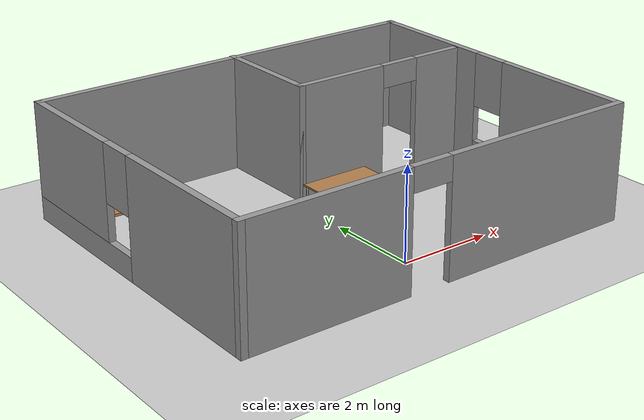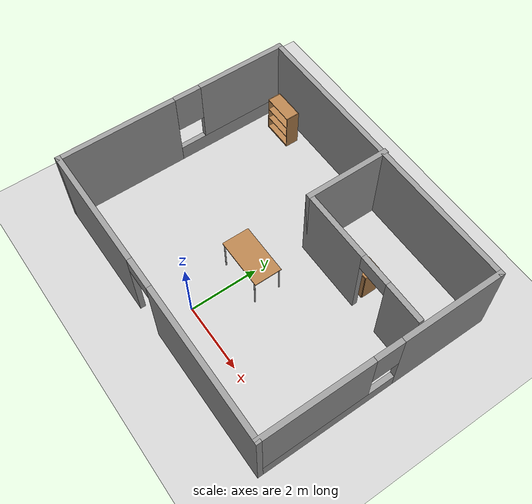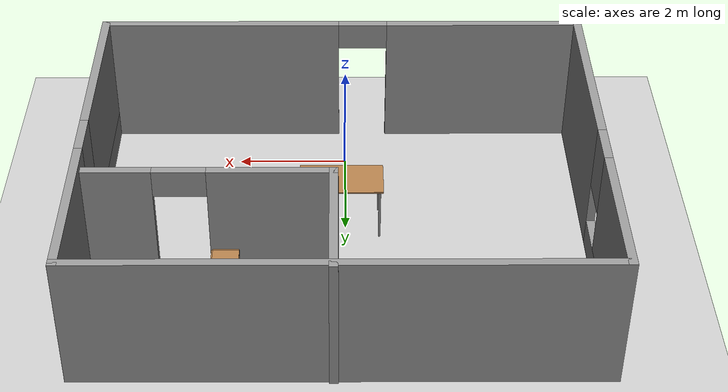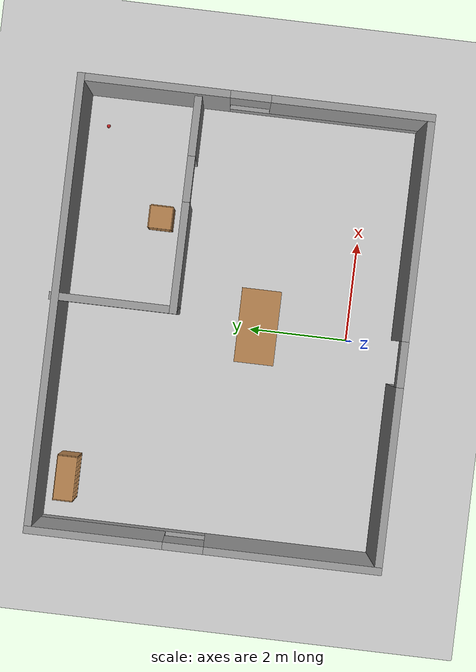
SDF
<sdf version="1.6">
 <world name="default">
  <light name="sun" type="directional">
   <pose>0 0 10 0 -0 0</pose>
   <diffuse>0.8 0.8 0.8 1</diffuse>
   <specular>0.2 0.2 0.2 1</specular>
   <attenuation>
    <range>1000</range>
    <constant>0.9</constant>
    <linear>0.01</linear>
    <quadratic>0.001</quadratic>
   </attenuation>
   <direction>-0.5 0.1 -0.9</direction>
   <spot><inner_angle>0</inner_angle><outer_angle>0</outer_angle><falloff>0</falloff></spot>
  </light>
  <model name="ground_plane">
   <static>1</static>
   <link name="link">
    <collision name="collision">
     <geometry><plane><normal>0 0 1</normal><size>100 100</size></plane></geometry>
     <surface>
      <contact><collide_bitmask>65535</collide_bitmask></contact>
      <friction><ode><mu>100</mu><mu2>50</mu2></ode></friction>
     </surface>
    </collision>
    <visual name="visual">
     <cast_shadows>0</cast_shadows>
     <geometry><plane><normal>0 0 1</normal><size>100 100</size></plane></geometry>
     <material>
      <script><uri>file://media/materials/scripts/gazebo.material</uri><name>Gazebo/Grey</name></script>
     </material>
    </visual>
   </link>
  </model>
  <gravity>0 0 -9.8</gravity>
  <magnetic_field>6e-06 2.3e-05 -4.2e-05</magnetic_field>
  <atmosphere type="adiabatic"/>
  <physics type="ode">
   <max_step_size>0.001</max_step_size>
   <real_time_factor>1</real_time_factor>
   <real_time_update_rate>1000</real_time_update_rate>
  </physics>
  <scene><ambient>0.4 0.4 0.4 1</ambient><background>0.7 0.7 0.7 1</background><shadows>1</shadows></scene>
  <audio><device>default</device></audio>
  <spherical_coordinates>
   <surface_model>EARTH_WGS84</surface_model>
   <latitude_deg>0</latitude_deg>
   <longitude_deg>0</longitude_deg>
   <elevation>0</elevation>
   <heading_deg>0</heading_deg>
  </spherical_coordinates>
  <model name="myroom">
   <pose>0.063928 2.44788 0 0 -0 0</pose>
   <link name="Wall_10">
    <pose>2.18763 1.09478 0 0 -0 0</pose>
    <visual name="Wall_10_Visual_0">
     <pose>-1.03496 0 1.25 0 -0 0</pose>
     <geometry><box><size>2.18007 0.15 2.5</size></box></geometry>
     <material>
      <script><uri>file://media/materials/scripts/gazebo.material</uri><name>Gazebo/Grey</name></script>
      <ambient>1 1 1 1</ambient>
     </material>
     <meta><layer>0</layer></meta>
    </visual>
    <collision name="Wall_10_Collision_0">
     <geometry><box><size>2.18007 0.15 2.5</size></box></geometry>
     <pose>-1.03496 0 1.25 0 -0 0</pose>
    </collision>
    <visual name="Wall_10_Visual_1">
     <pose>1.54004 0 1.25 0 -0 0</pose>
     <geometry><box><size>1.16993 0.15 2.5</size></box></geometry>
     <material>
      <script><uri>file://media/materials/scripts/gazebo.material</uri><name>Gazebo/Grey</name></script>
      <ambient>1 1 1 1</ambient>
     </material>
     <meta><layer>0</layer></meta>
    </visual>
    <collision name="Wall_10_Collision_1">
     <geometry><box><size>1.16993 0.15 2.5</size></box></geometry>
     <pose>1.54004 0 1.25 0 -0 0</pose>
    </collision>
    <visual name="Wall_10_Visual_2">
     <pose>0.50507 0 2.25 0 -0 0</pose>
     <geometry><box><size>0.9 0.15 0.5</size></box></geometry>
     <material>
      <script><uri>file://media/materials/scripts/gazebo.material</uri><name>Gazebo/Grey</name></script>
      <ambient>1 1 1 1</ambient>
     </material>
     <meta><layer>0</layer></meta>
    </visual>
    <collision name="Wall_10_Collision_2">
     <geometry><box><size>0.9 0.15 0.5</size></box></geometry>
     <pose>0.50507 0 2.25 0 -0 0</pose>
    </collision>
   </link>
   <link name="Wall_4">
    <pose>-4.425 -0.019782 0 0 -0 1.5708</pose>
    <visual name="Wall_4_Visual_0">
     <pose>-1.7538 0 1.25 0 -0 0</pose>
     <geometry><box><size>3.4924 0.15 2.5</size></box></geometry>
     <material>
      <script><uri>file://media/materials/scripts/gazebo.material</uri><name>Gazebo/Grey</name></script>
      <ambient>1 1 1 1</ambient>
     </material>
     <meta><layer>0</layer></meta>
    </visual>
    <collision name="Wall_4_Collision_0">
     <geometry><box><size>3.4924 0.15 2.5</size></box></geometry>
     <pose>-1.7538 0 1.25 0 -0 0</pose>
    </collision>
    <visual name="Wall_4_Visual_1">
     <pose>1.7462 0 0.25 0 -0 0</pose>
     <geometry><box><size>3.5076 0.15 0.5</size></box></geometry>
     <material>
      <script><uri>file://media/materials/scripts/gazebo.material</uri><name>Gazebo/Grey</name></script>
      <ambient>1 1 1 1</ambient>
     </material>
     <meta><layer>0</layer></meta>
    </visual>
    <collision name="Wall_4_Collision_1">
     <geometry><box><size>3.5076 0.15 0.5</size></box></geometry>
     <pose>1.7462 0 0.25 0 -0 0</pose>
    </collision>
    <visual name="Wall_4_Visual_2">
     <pose>2.1462 0 1.5 0 -0 0</pose>
     <geometry><box><size>2.7076 0.15 2</size></box></geometry>
     <material>
      <script><uri>file://media/materials/scripts/gazebo.material</uri><name>Gazebo/Grey</name></script>
      <ambient>1 1 1 1</ambient>
     </material>
     <meta><layer>0</layer></meta>
    </visual>
    <collision name="Wall_4_Collision_2">
     <geometry><box><size>2.7076 0.15 2</size></box></geometry>
     <pose>2.1462 0 1.5 0 -0 0</pose>
    </collision>
    <visual name="Wall_4_Visual_3">
     <pose>0.392396 0 1.9 0 -0 0</pose>
     <geometry><box><size>0.8 0.15 1.2</size></box></geometry>
     <material>
      <script><uri>file://media/materials/scripts/gazebo.material</uri><name>Gazebo/Grey</name></script>
      <ambient>1 1 1 1</ambient>
     </material>
     <meta><layer>0</layer></meta>
    </visual>
    <collision name="Wall_4_Collision_3">
     <geometry><box><size>0.8 0.15 1.2</size></box></geometry>
     <pose>0.392396 0 1.9 0 -0 0</pose>
    </collision>
   </link>
   <link name="Wall_5">
    <collision name="Wall_5_Collision">
     <geometry><box><size>9 0.15 2.5</size></box></geometry>
     <pose>0 0 1.25 0 -0 0</pose>
    </collision>
    <visual name="Wall_5_Visual">
     <pose>0 0 1.25 0 -0 0</pose>
     <geometry><box><size>9 0.15 2.5</size></box></geometry>
     <material>
      <script><uri>file://media/materials/scripts/gazebo.material</uri><name>Gazebo/Grey</name></script>
      <ambient>1 1 1 1</ambient>
     </material>
     <meta><layer>0</layer></meta>
    </visual>
    <pose>-0 3.40522 0 0 -0 0</pose>
   </link>
   <link name="Wall_6">
    <pose>4.425 -0.019782 0 0 -0 -1.5708</pose>
    <visual name="Wall_6_Visual_0">
     <pose>-2.00171 0 1.25 0 -0 0</pose>
     <geometry><box><size>2.99657 0.15 2.5</size></box></geometry>
     <material>
      <script><uri>file://media/materials/scripts/gazebo.material</uri><name>Gazebo/Grey</name></script>
      <ambient>1 1 1 1</ambient>
     </material>
     <meta><layer>0</layer></meta>
    </visual>
    <collision name="Wall_6_Collision_0">
     <geometry><box><size>2.99657 0.15 2.5</size></box></geometry>
     <pose>-2.00171 0 1.25 0 -0 0</pose>
    </collision>
    <visual name="Wall_6_Visual_1">
     <pose>1.49829 0 0.25 0 -0 0</pose>
     <geometry><box><size>4.00343 0.15 0.5</size></box></geometry>
     <material>
      <script><uri>file://media/materials/scripts/gazebo.material</uri><name>Gazebo/Grey</name></script>
      <ambient>1 1 1 1</ambient>
     </material>
     <meta><layer>0</layer></meta>
    </visual>
    <collision name="Wall_6_Collision_1">
     <geometry><box><size>4.00343 0.15 0.5</size></box></geometry>
     <pose>1.49829 0 0.25 0 -0 0</pose>
    </collision>
    <visual name="Wall_6_Visual_2">
     <pose>1.89829 0 1.5 0 -0 0</pose>
     <geometry><box><size>3.20343 0.15 2</size></box></geometry>
     <material>
      <script><uri>file://media/materials/scripts/gazebo.material</uri><name>Gazebo/Grey</name></script>
      <ambient>1 1 1 1</ambient>
     </material>
     <meta><layer>0</layer></meta>
    </visual>
    <collision name="Wall_6_Collision_2">
     <geometry><box><size>3.20343 0.15 2</size></box></geometry>
     <pose>1.89829 0 1.5 0 -0 0</pose>
    </collision>
    <visual name="Wall_6_Visual_3">
     <pose>-0.10343 0 1.9 0 -0 0</pose>
     <geometry><box><size>0.8 0.15 1.2</size></box></geometry>
     <material>
      <script><uri>file://media/materials/scripts/gazebo.material</uri><name>Gazebo/Grey</name></script>
      <ambient>1 1 1 1</ambient>
     </material>
     <meta><layer>0</layer></meta>
    </visual>
    <collision name="Wall_6_Collision_3">
     <geometry><box><size>0.8 0.15 1.2</size></box></geometry>
     <pose>-0.10343 0 1.9 0 -0 0</pose>
    </collision>
   </link>
   <link name="Wall_7">
    <pose>-0 -3.44478 0 0 -0 3.14159</pose>
    <visual name="Wall_7_Visual_0">
     <pose>-2.27766 0 1.25 0 -0 0</pose>
     <geometry><box><size>4.44468 0.15 2.5</size></box></geometry>
     <material>
      <script><uri>file://media/materials/scripts/gazebo.material</uri><name>Gazebo/Grey</name></script>
      <ambient>1 1 1 1</ambient>
     </material>
     <meta><layer>0</layer></meta>
    </visual>
    <collision name="Wall_7_Collision_0">
     <geometry><box><size>4.44468 0.15 2.5</size></box></geometry>
     <pose>-2.27766 0 1.25 0 -0 0</pose>
    </collision>
    <visual name="Wall_7_Visual_1">
     <pose>2.67234 0 1.25 0 -0 0</pose>
     <geometry><box><size>3.65532 0.15 2.5</size></box></geometry>
     <material>
      <script><uri>file://media/materials/scripts/gazebo.material</uri><name>Gazebo/Grey</name></script>
      <ambient>1 1 1 1</ambient>
     </material>
     <meta><layer>0</layer></meta>
    </visual>
    <collision name="Wall_7_Collision_1">
     <geometry><box><size>3.65532 0.15 2.5</size></box></geometry>
     <pose>2.67234 0 1.25 0 -0 0</pose>
    </collision>
    <visual name="Wall_7_Visual_2">
     <pose>0.394681 0 2.25 0 -0 0</pose>
     <geometry><box><size>0.9 0.15 0.5</size></box></geometry>
     <material>
      <script><uri>file://media/materials/scripts/gazebo.material</uri><name>Gazebo/Grey</name></script>
      <ambient>1 1 1 1</ambient>
     </material>
     <meta><layer>0</layer></meta>
    </visual>
    <collision name="Wall_7_Collision_2">
     <geometry><box><size>0.9 0.15 0.5</size></box></geometry>
     <pose>0.394681 0 2.25 0 -0 0</pose>
    </collision>
   </link>
   <link name="Wall_9">
    <collision name="Wall_9_Collision">
     <geometry><box><size>2.5 0.15 2.5</size></box></geometry>
     <pose>0 0 1.25 0 -0 0</pose>
    </collision>
    <visual name="Wall_9_Visual">
     <pose>0 0 1.25 0 -0 0</pose>
     <geometry><box><size>2.5 0.15 2.5</size></box></geometry>
     <material>
      <script><uri>file://media/materials/scripts/gazebo.material</uri><name>Gazebo/Grey</name></script>
      <ambient>1 1 1 1</ambient>
     </material>
     <meta><layer>0</layer></meta>
    </visual>
    <pose>0.137625 2.26978 0 0 -0 -1.5708</pose>
   </link>
   <static>1</static>
  </model>
  <model name="bookshelf">
   <static>1</static>
   <link name="link">
    <inertial><mass>1</mass></inertial>
    <collision name="back">
     <pose>0 0.005 0.6 0 -0 0</pose>
     <geometry><box><size>0.9 0.01 1.2</size></box></geometry>
    </collision>
    <visual name="visual1">
     <pose>0 0.005 0.6 0 -0 0</pose>
     <geometry><box><size>0.9 0.01 1.2</size></box></geometry>
     <material>
      <script><uri>file://media/materials/scripts/gazebo.material</uri><name>Gazebo/Wood</name></script>
     </material>
    </visual>
    <collision name="left_side">
     <pose>0.45 -0.195 0.6 0 -0 0</pose>
     <geometry><box><size>0.02 0.4 1.2</size></box></geometry>
    </collision>
    <visual name="visual2">
     <pose>0.45 -0.195 0.6 0 -0 0</pose>
     <geometry><box><size>0.02 0.4 1.2</size></box></geometry>
     <material>
      <script><uri>file://media/materials/scripts/gazebo.material</uri><name>Gazebo/Wood</name></script>
     </material>
    </visual>
    <collision name="right_side">
     <pose>-0.45 -0.195 0.6 0 -0 0</pose>
     <geometry><box><size>0.02 0.4 1.2</size></box></geometry>
    </collision>
    <visual name="visual3">
     <pose>-0.45 -0.195 0.6 0 -0 0</pose>
     <geometry><box><size>0.02 0.4 1.2</size></box></geometry>
     <material>
      <script><uri>file://media/materials/scripts/gazebo.material</uri><name>Gazebo/Wood</name></script>
     </material>
    </visual>
    <collision name="bottom">
     <pose>0 -0.195 0.03 0 -0 0</pose>
     <geometry><box><size>0.88 0.4 0.06</size></box></geometry>
    </collision>
    <visual name="visual4">
     <pose>0 -0.195 0.03 0 -0 0</pose>
     <geometry><box><size>0.88 0.4 0.06</size></box></geometry>
     <material>
      <script><uri>file://media/materials/scripts/gazebo.material</uri><name>Gazebo/Wood</name></script>
     </material>
    </visual>
    <collision name="top">
     <pose>0 -0.195 1.19 0 -0 0</pose>
     <geometry><box><size>0.88 0.4 0.02</size></box></geometry>
    </collision>
    <visual name="visual5">
     <pose>0 -0.195 1.19 0 -0 0</pose>
     <geometry><box><size>0.88 0.4 0.02</size></box></geometry>
     <material>
      <script><uri>file://media/materials/scripts/gazebo.material</uri><name>Gazebo/Wood</name></script>
     </material>
    </visual>
    <collision name="low_shelf">
     <pose>0 -0.195 0.43 0 -0 0</pose>
     <geometry><box><size>0.88 0.4 0.02</size></box></geometry>
    </collision>
    <visual name="visual6">
     <pose>0 -0.195 0.43 0 -0 0</pose>
     <geometry><box><size>0.88 0.4 0.02</size></box></geometry>
     <material>
      <script><uri>file://media/materials/scripts/gazebo.material</uri><name>Gazebo/Wood</name></script>
     </material>
    </visual>
    <collision name="high_shelf">
     <pose>0 -0.195 0.8 0 -0 0</pose>
     <geometry><box><size>0.88 0.4 0.02</size></box></geometry>
    </collision>
    <visual name="visual7">
     <pose>0 -0.195 0.8 0 -0 0</pose>
     <geometry><box><size>0.88 0.4 0.02</size></box></geometry>
     <material>
      <script><uri>file://media/materials/scripts/gazebo.material</uri><name>Gazebo/Wood</name></script>
     </material>
    </visual>
   </link>
   <pose>-3.39671 5.52441 0.000694 -0.003253 0 0</pose>
  </model>
  <model name="table">
   <static>1</static>
   <link name="link">
    <collision name="surface">
     <pose>0 0 1 0 -0 0</pose>
     <geometry><box><size>1.5 0.8 0.03</size></box></geometry>
     <surface><friction><ode><mu>0.6</mu><mu2>0.6</mu2></ode></friction></surface>
    </collision>
    <visual name="visual1">
     <pose>0 0 1 0 -0 0</pose>
     <geometry><box><size>1.5 0.8 0.03</size></box></geometry>
     <material>
      <script><uri>file://media/materials/scripts/gazebo.material</uri><name>Gazebo/Wood</name></script>
     </material>
    </visual>
    <collision name="front_left_leg">
     <pose>0.68 0.38 0.5 0 -0 0</pose>
     <geometry><cylinder><radius>0.02</radius><length>1</length></cylinder></geometry>
    </collision>
    <visual name="front_left_leg">
     <pose>0.68 0.38 0.5 0 -0 0</pose>
     <geometry><cylinder><radius>0.02</radius><length>1</length></cylinder></geometry>
     <material>
      <script><uri>file://media/materials/scripts/gazebo.material</uri><name>Gazebo/Grey</name></script>
     </material>
    </visual>
    <collision name="front_right_leg">
     <pose>0.68 -0.38 0.5 0 -0 0</pose>
     <geometry><cylinder><radius>0.02</radius><length>1</length></cylinder></geometry>
    </collision>
    <visual name="front_right_leg">
     <pose>0.68 -0.38 0.5 0 -0 0</pose>
     <geometry><cylinder><radius>0.02</radius><length>1</length></cylinder></geometry>
     <material>
      <script><uri>file://media/materials/scripts/gazebo.material</uri><name>Gazebo/Grey</name></script>
     </material>
    </visual>
    <collision name="back_right_leg">
     <pose>-0.68 -0.38 0.5 0 -0 0</pose>
     <geometry><cylinder><radius>0.02</radius><length>1</length></cylinder></geometry>
    </collision>
    <visual name="back_right_leg">
     <pose>-0.68 -0.38 0.5 0 -0 0</pose>
     <geometry><cylinder><radius>0.02</radius><length>1</length></cylinder></geometry>
     <material>
      <script><uri>file://media/materials/scripts/gazebo.material</uri><name>Gazebo/Grey</name></script>
     </material>
    </visual>
    <collision name="back_left_leg">
     <pose>-0.68 0.38 0.5 0 -0 0</pose>
     <geometry><cylinder><radius>0.02</radius><length>1</length></cylinder></geometry>
    </collision>
    <visual name="back_left_leg">
     <pose>-0.68 0.38 0.5 0 -0 0</pose>
     <geometry><cylinder><radius>0.02</radius><length>1</length></cylinder></geometry>
     <material>
      <script><uri>file://media/materials/scripts/gazebo.material</uri><name>Gazebo/Grey</name></script>
     </material>
    </visual>
   </link>
   <pose>0.073173 1.8555 0 0 -0 0</pose>
  </model>
  <model name="cabinet">
   <static>1</static>
   <link name="cabinet_bottom_plate">
    <inertial>
     <pose>0 0 -1 0 -0 0</pose>
     <inertia><ixx>2.05</ixx><ixy>0</ixy><ixz>0</ixz><iyy>2.05</iyy><iyz>0</iyz><izz>2.05</izz></inertia>
     <mass>25</mass>
    </inertial>
    <collision name="cabinet_bottom_plate_geom">
     <pose>0 0 0.01 0 -0 0</pose>
     <geometry><box><size>0.45 0.45 0.02</size></box></geometry>
    </collision>
    <visual name="cabinet_bottom_plate_geom_visual">
     <pose>0 0 0.01 0 -0 0</pose>
     <geometry><box><size>0.45 0.45 0.02</size></box></geometry>
     <material>
      <script><uri>file://media/materials/scripts/gazebo.material</uri><name>Gazebo/Wood</name></script>
     </material>
    </visual>
    <collision name="cabinet_bottom_plate_geom_cabinet_back_plate">
     <pose>0.235 0 0.51 0 -0 0</pose>
     <geometry><box><size>0.02 0.45 1.02</size></box></geometry>
    </collision>
    <visual name="cabinet_bottom_plate_geom_cabinet_back_plate_visual">
     <pose>0.235 0 0.51 0 -0 0</pose>
     <geometry><box><size>0.02 0.45 1.02</size></box></geometry>
     <material>
      <script><uri>file://media/materials/scripts/gazebo.material</uri><name>Gazebo/Wood</name></script>
     </material>
    </visual>
    <collision name="cabinet_bottom_plate_geom_cabinet_left_plate">
     <pose>0 0.235 0.51 0 -0 0</pose>
     <geometry><box><size>0.45 0.02 1.02</size></box></geometry>
    </collision>
    <visual name="cabinet_bottom_plate_geom_cabinet_left_plate_visual">
     <pose>0 0.235 0.51 0 -0 0</pose>
     <geometry><box><size>0.45 0.02 1.02</size></box></geometry>
     <material>
      <script><uri>file://media/materials/scripts/gazebo.material</uri><name>Gazebo/Wood</name></script>
     </material>
    </visual>
    <collision name="cabinet_bottom_plate_geom_cabinet_middle_plate">
     <pose>0 0 0.51 0 -0 0</pose>
     <geometry><box><size>0.45 0.45 0.02</size></box></geometry>
    </collision>
    <visual name="cabinet_bottom_plate_geom_cabinet_middle_plate_visual">
     <pose>0 0 0.51 0 -0 0</pose>
     <geometry><box><size>0.45 0.45 0.02</size></box></geometry>
     <material>
      <script><uri>file://media/materials/scripts/gazebo.material</uri><name>Gazebo/Wood</name></script>
     </material>
    </visual>
    <collision name="cabinet_bottom_plate_geom_cabinet_right_plate">
     <pose>0 -0.235 0.51 0 -0 0</pose>
     <geometry><box><size>0.45 0.02 1.02</size></box></geometry>
    </collision>
    <visual name="cabinet_bottom_plate_geom_cabinet_right_plate_visual">
     <pose>0 -0.235 0.51 0 -0 0</pose>
     <geometry><box><size>0.45 0.02 1.02</size></box></geometry>
     <material>
      <script><uri>file://media/materials/scripts/gazebo.material</uri><name>Gazebo/Wood</name></script>
     </material>
    </visual>
    <collision name="cabinet_bottom_plate_geom_cabinet_top_plate">
     <pose>0 0 1.01 0 -0 0</pose>
     <geometry><box><size>0.45 0.45 0.02</size></box></geometry>
    </collision>
    <visual name="cabinet_bottom_plate_geom_cabinet_top_plate_visual">
     <pose>0 0 1.01 0 -0 0</pose>
     <geometry><box><size>0.45 0.45 0.02</size></box></geometry>
     <material>
      <script><uri>file://media/materials/scripts/gazebo.material</uri><name>Gazebo/Wood</name></script>
     </material>
    </visual>
   </link>
   <pose>2.02546 4.05403 0 0 -0 0</pose>
  </model>
  <model name="cricket_ball">
   <link name="link">
    <pose>0 0 0.0375 0 -0 0</pose>
    <inertial>
     <mass>0.1467</mass>
     <inertia>
      <ixx>8.25187e-05</ixx>
      <ixy>0</ixy>
      <ixz>0</ixz>
      <iyy>8.25187e-05</iyy>
      <iyz>0</iyz>
      <izz>8.25187e-05</izz>
     </inertia>
    </inertial>
    <collision name="collision">
     <geometry><sphere><radius>0.0375</radius></sphere></geometry>
     <surface>
      <contact>
       <poissons_ratio>0.347</poissons_ratio>
       <elastic_modulus>8.8e+09</elastic_modulus>
       <ode><kp>100000</kp><kd>100</kd><max_vel>100</max_vel><min_depth>0.001</min_depth></ode>
      </contact>
      <friction>
       <torsional>
        <coefficient>1</coefficient>
        <use_patch_radius>0</use_patch_radius>
        <surface_radius>0.01</surface_radius>
       </torsional>
      </friction>
     </surface>
    </collision>
    <visual name="visual">
     <geometry><sphere><radius>0.0375</radius></sphere></geometry>
     <material>
      <script><uri>file://media/materials/scripts/gazebo.material</uri><name>Gazebo/Red</name></script>
     </material>
    </visual>
    <velocity_decay><linear>0</linear><angular>0.005</angular></velocity_decay>
   </link>
   <pose>3.80887 5.37046 0.071033 0 -0 0</pose>
  </model>
 </world>
</sdf>
